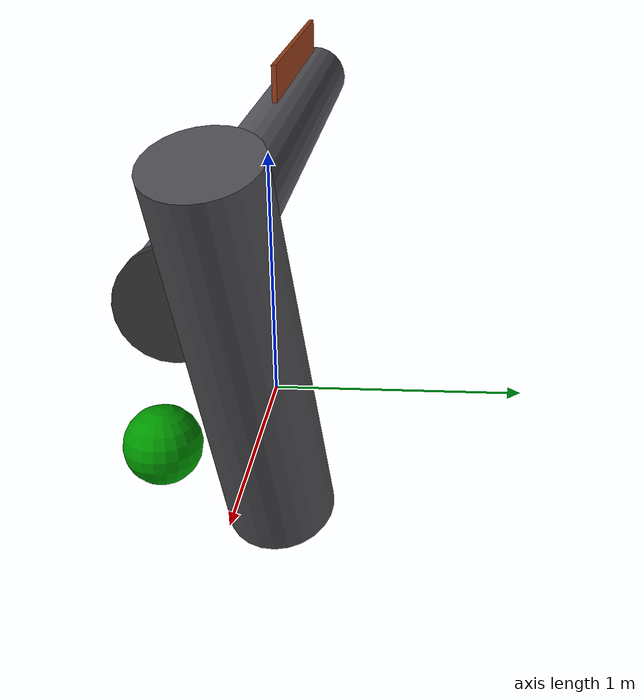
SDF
<?xml version="1.0" ?>
<sdf version="1.7">

  <model name="broken_pipe">

    <static>true</static>

    <link name="pipe_link">

      <!-- MAIN PIPE -->
      <collision name="collision_main">
        <pose>0 0 1.0 0 1.57 0</pose>

        <geometry>
          <cylinder>
            <radius>0.15</radius>
            <length>3.0</length>
          </cylinder>
        </geometry>
      </collision>

      <visual name="pipe_main">

        <pose>0 0 1.0 0 1.57 0</pose>

        <geometry>
          <cylinder>
            <radius>0.15</radius>
            <length>3.0</length>
          </cylinder>
        </geometry>

        <material>
          <ambient>0.25 0.25 0.27 1</ambient>
          <diffuse>0.35 0.35 0.38 1</diffuse>
          <specular>0.05 0.05 0.05 1</specular>
        </material>

      </visual>

      <!-- BROKEN SEGMENT -->
      <visual name="pipe_broken_segment">

        <pose>1.6 0.2 0.9 0.3 0.2 0.8</pose>

        <geometry>
          <cylinder>
            <radius>0.15</radius>
            <length>1.2</length>
          </cylinder>
        </geometry>

        <material>
          <ambient>0.2 0.2 0.22 1</ambient>
          <diffuse>0.3 0.3 0.32 1</diffuse>
        </material>

      </visual>

      <!-- OPEN END CAP -->
      <visual name="pipe_open_end">

        <pose>1.5 0 1.0 0 1.57 0</pose>

        <geometry>
          <cylinder>
            <radius>0.16</radius>
            <length>0.05</length>
          </cylinder>
        </geometry>

        <material>
          <ambient>0.15 0.15 0.15 1</ambient>
          <diffuse>0.2 0.2 0.2 1</diffuse>
        </material>

      </visual>

      <!-- RUST PATCH -->
      <visual name="rust_patch">

        <pose>-0.8 0.0 1.1 0 0 0</pose>

        <geometry>
          <box>
            <size>1.2 0.02 0.4</size>
          </box>
        </geometry>

        <material>
          <ambient>0.5 0.2 0.05 1</ambient>
          <diffuse>0.6 0.25 0.1 1</diffuse>
        </material>

      </visual>

      <!-- LEAK EFFECT (visual marker) -->
      <visual name="leak_marker">

        <pose>1.7 0 0.7 0 0 0</pose>

        <geometry>
          <sphere>
            <radius>0.1</radius>
          </sphere>
        </geometry>

        <material>
          <ambient>0.0 0.3 0.0 1</ambient>
          <diffuse>0.0 0.6 0.0 1</diffuse>
        </material>

      </visual>

    </link>

  </model>

</sdf>
